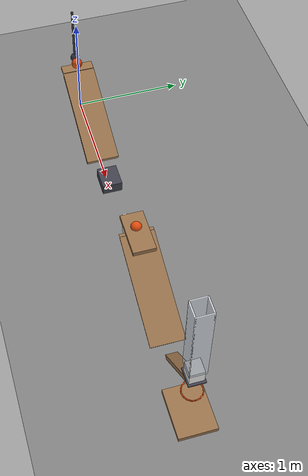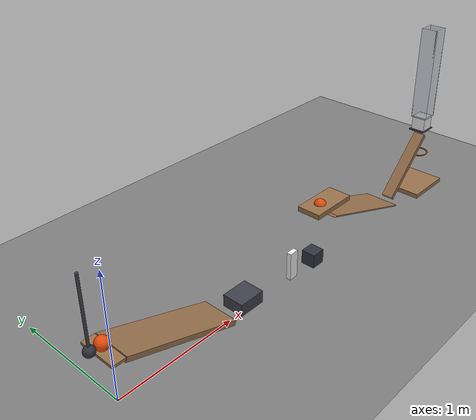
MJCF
<mujoco model="pendulum_domino_and_seesaw_chain">
  <compiler angle="radian"/>
  <option timestep="0.002"/>
  <worldbody>
    <geom name="floor" type="plane" size="10 10 0.1" friction="0.68 0.005 0.002"/>
    <body name="ramp1">
      <geom name="ramp1" type="box" pos="0.449121 0 0.285735" size="0.475 0.15 0.02" euler="0 0.331613 0" friction="0.68 0.005 0.002" solref="0.01 0.690107" rgba="0.6 0.45 0.3 1"/>
    </body>
    <body name="ball1 perch">
      <geom name="ball1 perch" type="box" pos="-0.05 0 0.44929" size="0.05 0.15 0.01" friction="0.68 0.005 0.002" solref="0.01 0.690107" rgba="0.6 0.45 0.3 1"/>
    </body>
    <body name="ball1" pos="-0.05 0 0.50929">
      <freejoint/>
      <geom name="ball1" type="sphere" pos="0 0 0" size="0.05" mass="0.2" condim="6" friction="0.68 0.005 0.002" solref="0.01 0.690107" rgba="0.9 0.3 0.05 1"/>
    </body>
    <body name="pendulum1" pos="-0.14 0 1.05929">
      <joint name="pendulum_hinge" type="hinge" pos="0 0 0" axis="0 1 0" limited="true" range="-1.22173 0.959931" damping="0.04"/>
      <geom name="pendulum1" type="sphere" pos="0 0 -0.55" size="0.04" mass="0.36" friction="0.68 0.005 0.002" solref="0.01 0.690107" rgba="0.2 0.2 0.25 1"/>
      <geom name="pendulum rod" type="capsule" size="0.01" fromto="0 0 0 0 0 -0.55" mass="0.04" friction="0.68 0.005 0.002" solref="0.01 0.690107" rgba="0.25 0.25 0.3 1"/>
    </body>
    <body name="cart1" pos="1.13475 0 0.12">
      <joint name="cart_track" type="slide" pos="0 0 0" axis="1 0 0" limited="true" range="0 0.4" damping="0.2"/>
      <geom name="cart1" type="box" pos="0 0 0" size="0.11 0.09 0.05" mass="0.5" friction="0.68 0.005 0.002" solref="0.01 0.690107" rgba="0.25 0.25 0.3 1"/>
    </body>
    <body name="domino1" pos="1.68475 0 0.12">
      <freejoint/>
      <geom name="domino1" type="box" pos="0 0 0" size="0.04 0.02 0.12" mass="0.25" friction="0.68 0.005 0.002" solref="0.01 0.690107" rgba="0.95 0.95 0.95 1"/>
    </body>
    <body name="flap1" pos="1.86475 0 0.5">
      <joint name="flap_hinge" type="hinge" pos="0 0 0" axis="0 1 0" limited="true" range="0.436332 1.5708" stiffness="0.7" springref="0.436332" damping="0.04"/>
      <geom name="flap1" type="box" pos="0.2 0 0" size="0.2 0.1 0.02" mass="0.3" friction="0.68 0.005 0.002" solref="0.01 0.690107" rgba="0.6 0.45 0.3 1"/>
    </body>
    <body name="flap detent" pos="1.94475 0 0.06">
      <joint name="detent_track" type="slide" pos="0 0 0" axis="1 0 0" limited="true" range="0 0.14" damping="0.2"/>
      <geom name="flap detent" type="box" pos="0 0 0" size="0.06 0.06 0.06" mass="0.35" friction="0.68 0.005 0.002" solref="0.01 0.690107" rgba="0.2 0.2 0.25 1"/>
    </body>
    <body name="ramp2">
      <geom name="ramp2" type="box" pos="2.48388 0 0.299917" size="0.475 0.15 0.005" euler="0 0.331613 0" friction="0.68 0.005 0.002" solref="0.01 0.690107" rgba="0.6 0.45 0.3 1"/>
    </body>
    <body name="ball2 perch">
      <geom name="ball2 perch" type="box" pos="2.01975 0 0.45879" size="0.015 0.15 0.0005" friction="0.68 0.005 0.002" solref="0.01 0.690107" rgba="0.6 0.45 0.3 1"/>
    </body>
    <body name="ball2" pos="2.00975 0 0.50929">
      <freejoint/>
      <geom name="ball2" type="sphere" pos="0 0 0" size="0.05" mass="0.2" condim="6" friction="0.68 0.005 0.002" solref="0.01 0.690107" rgba="0.9 0.3 0.05 1"/>
    </body>
    <body name="seesaw1" pos="3.26443 0 0.35981">
      <joint name="seesaw_hinge" type="hinge" pos="0 0 0" axis="0 1 0" limited="true" range="-0.698132 0" stiffness="1.1" springref="-0.698132" damping="0.04"/>
      <geom name="seesaw1" type="box" pos="0 0 0" size="0.325 0.05 0.02" euler="0 -0.785398 0" mass="0.55" friction="0.68 0.005 0.002" solref="0.01 0.690107" rgba="0.6 0.45 0.3 1"/>
      <geom name="launch shoe" type="box" pos="0.22981 0 0.29019" size="0.08 0.07 0.005" mass="0" friction="0.68 0.005 0.002" solref="0.01 0.690107" rgba="0.25 0.25 0.3 1"/>
      <geom name="launch shoe support" type="capsule" size="0.0025" fromto="0.22981 0 0.22981 0.22981 0 0.29019" mass="0" friction="0.68 0.005 0.002" solref="0.01 0.690107" rgba="0.25 0.25 0.3 1"/>
    </body>
    <body name="block1" pos="3.49424 0 0.715">
      <freejoint/>
      <geom name="block1" type="box" pos="0 0 0" size="0.06 0.06 0.06" mass="0.35" friction="0.68 0.005 0.002" solref="0.01 0.690107" rgba="0.95 0.95 0.95 1"/>
    </body>
    <body name="launch guide near">
      <geom name="launch guide near" type="box" pos="3.42824 0 1.17" size="0.004 0.07 0.4" friction="0.68 0.005 0.002" solref="0.01 0.690107" rgba="0.92 0.95 0.98 0.85"/>
    </body>
    <body name="launch guide far">
      <geom name="launch guide far" type="box" pos="3.56024 0 1.17" size="0.004 0.07 0.4" friction="0.68 0.005 0.002" solref="0.01 0.690107" rgba="0.92 0.95 0.98 0.85"/>
    </body>
    <body name="launch guide left">
      <geom name="launch guide left" type="box" pos="3.49424 0.066 1.17" size="0.07 0.004 0.4" friction="0.68 0.005 0.002" solref="0.01 0.690107" rgba="0.92 0.95 0.98 0.85"/>
    </body>
    <body name="launch guide right">
      <geom name="launch guide right" type="box" pos="3.49424 -0.066 1.17" size="0.07 0.004 0.4" friction="0.68 0.005 0.002" solref="0.01 0.690107" rgba="0.92 0.95 0.98 0.85"/>
    </body>
    <body name="ring1">
      <geom name="ring1_00" type="capsule" size="0.005" fromto="3.57924 0 0.415 3.57277 0.0325281 0.415" friction="0.68 0.005 0.002" solref="0.01 0.690107" rgba="0.9 0.3 0.05 1"/>
      <geom name="ring1_01" type="capsule" size="0.005" fromto="3.57277 0.0325281 0.415 3.55435 0.0601041 0.415" friction="0.68 0.005 0.002" solref="0.01 0.690107" rgba="0.9 0.3 0.05 1"/>
      <geom name="ring1_02" type="capsule" size="0.005" fromto="3.55435 0.0601041 0.415 3.52677 0.0785298 0.415" friction="0.68 0.005 0.002" solref="0.01 0.690107" rgba="0.9 0.3 0.05 1"/>
      <geom name="ring1_03" type="capsule" size="0.005" fromto="3.52677 0.0785298 0.415 3.49424 0.085 0.415" friction="0.68 0.005 0.002" solref="0.01 0.690107" rgba="0.9 0.3 0.05 1"/>
      <geom name="ring1_04" type="capsule" size="0.005" fromto="3.49424 0.085 0.415 3.46172 0.0785298 0.415" friction="0.68 0.005 0.002" solref="0.01 0.690107" rgba="0.9 0.3 0.05 1"/>
      <geom name="ring1_05" type="capsule" size="0.005" fromto="3.46172 0.0785298 0.415 3.43414 0.0601041 0.415" friction="0.68 0.005 0.002" solref="0.01 0.690107" rgba="0.9 0.3 0.05 1"/>
      <geom name="ring1_06" type="capsule" size="0.005" fromto="3.43414 0.0601041 0.415 3.41571 0.0325281 0.415" friction="0.68 0.005 0.002" solref="0.01 0.690107" rgba="0.9 0.3 0.05 1"/>
      <geom name="ring1_07" type="capsule" size="0.005" fromto="3.41571 0.0325281 0.415 3.40924 1.04095e-17 0.415" friction="0.68 0.005 0.002" solref="0.01 0.690107" rgba="0.9 0.3 0.05 1"/>
      <geom name="ring1_08" type="capsule" size="0.005" fromto="3.40924 1.04095e-17 0.415 3.41571 -0.0325281 0.415" friction="0.68 0.005 0.002" solref="0.01 0.690107" rgba="0.9 0.3 0.05 1"/>
      <geom name="ring1_09" type="capsule" size="0.005" fromto="3.41571 -0.0325281 0.415 3.43414 -0.0601041 0.415" friction="0.68 0.005 0.002" solref="0.01 0.690107" rgba="0.9 0.3 0.05 1"/>
      <geom name="ring1_10" type="capsule" size="0.005" fromto="3.43414 -0.0601041 0.415 3.46172 -0.0785298 0.415" friction="0.68 0.005 0.002" solref="0.01 0.690107" rgba="0.9 0.3 0.05 1"/>
      <geom name="ring1_11" type="capsule" size="0.005" fromto="3.46172 -0.0785298 0.415 3.49424 -0.085 0.415" friction="0.68 0.005 0.002" solref="0.01 0.690107" rgba="0.9 0.3 0.05 1"/>
      <geom name="ring1_12" type="capsule" size="0.005" fromto="3.49424 -0.085 0.415 3.52677 -0.0785298 0.415" friction="0.68 0.005 0.002" solref="0.01 0.690107" rgba="0.9 0.3 0.05 1"/>
      <geom name="ring1_13" type="capsule" size="0.005" fromto="3.52677 -0.0785298 0.415 3.55435 -0.0601041 0.415" friction="0.68 0.005 0.002" solref="0.01 0.690107" rgba="0.9 0.3 0.05 1"/>
      <geom name="ring1_14" type="capsule" size="0.005" fromto="3.55435 -0.0601041 0.415 3.57277 -0.0325281 0.415" friction="0.68 0.005 0.002" solref="0.01 0.690107" rgba="0.9 0.3 0.05 1"/>
      <geom name="ring1_15" type="capsule" size="0.005" fromto="3.57277 -0.0325281 0.415 3.57924 -2.0819e-17 0.415" friction="0.68 0.005 0.002" solref="0.01 0.690107" rgba="0.9 0.3 0.05 1"/>
    </body>
    <body name="door1" pos="3.28424 0 0.085">
      <joint name="door_hinge" type="hinge" pos="0 0 0" axis="0 1 0" limited="true" range="-1.13446 0" damping="0.04"/>
      <geom name="door1" type="box" pos="0.21 0 0" size="0.21 0.16 0.02" mass="0.45" friction="0.68 0.005 0.002" solref="0.01 0.690107" rgba="0.6 0.45 0.3 1"/>
    </body>
  </worldbody>
  <keyframe>
    <key name="start" qpos="-0.05 0 0.50929 1 0 0 0 0.959931 0 1.68475 0 0.12 1 0 0 0 1.5708 0 2.00975 0 0.50929 1 0 0 0 0 3.49424 0 0.715 1 0 0 0 0" qvel="0 0 0 0 0 0 0 0 0 0 0 0 0 0 0 0 0 0 0 0 0 0 0 0 0 0 0 0 0 0"/>
  </keyframe>
</mujoco>
